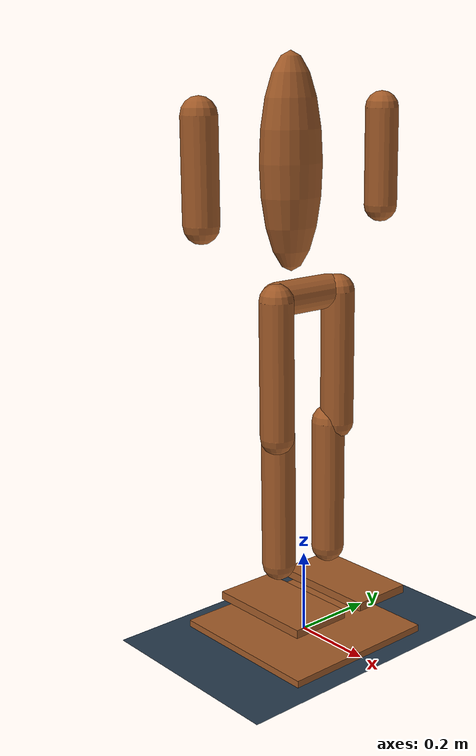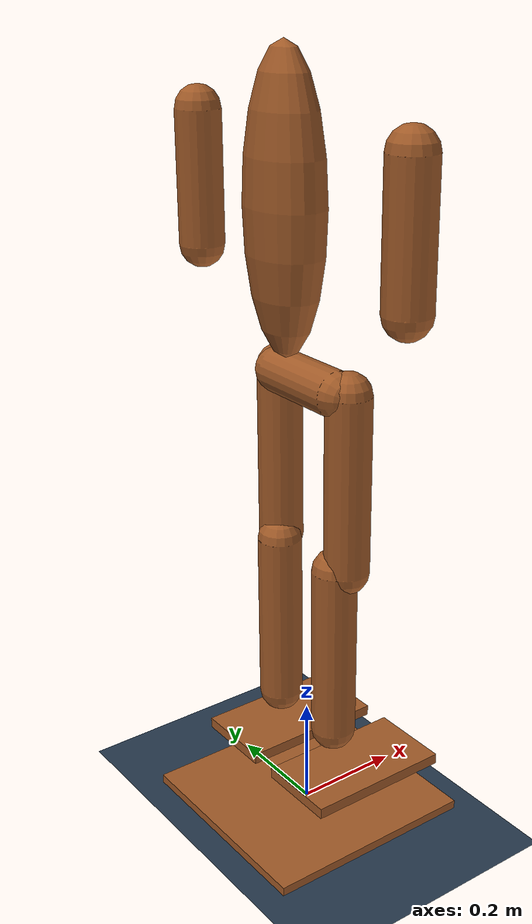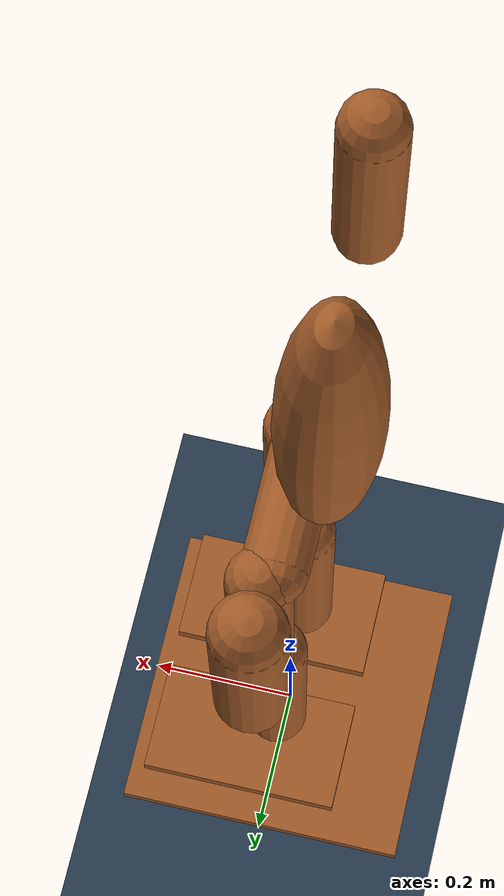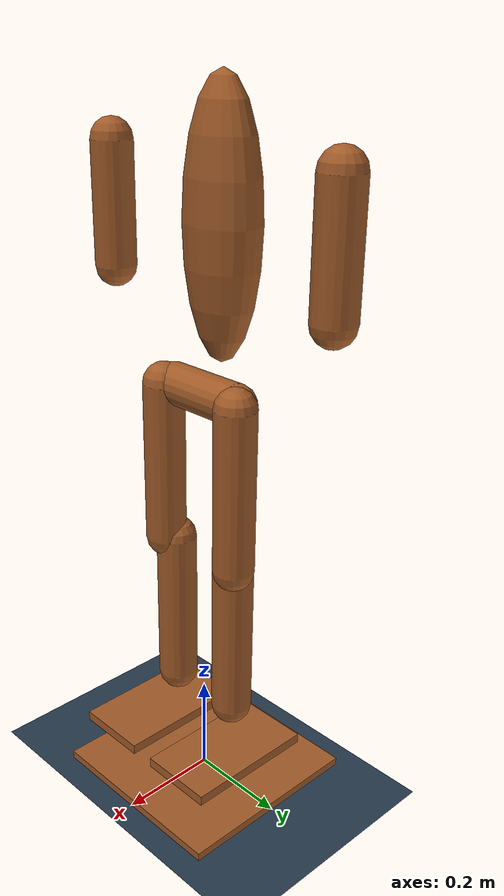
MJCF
<mujoco model="Humanoid">

	<compiler inertiafromgeom = "false" angle = "radian" />

	<default>
		<joint limited = "true" stiffness = "1500" damping = "10" armature = "2.5" />
		<geom condim = "4" material = "matgeom" />
		<motor ctrlrange = "-314.0 314.0" ctrllimited = "true"/>
		<position kp = "15"/>
	</default>

	<option timestep = "0.004" apirate = "144" iterations = "50"/>
	<option impratio = "0.1" />
	<option tolerance = "1e-10" solver = "Newton" />
	<option jacobian = "dense" cone = "pyramidal" gravity = "0.0 0.0 -9.8"/>

	<size nconmax = "50" njmax = "200" nstack = "10000"/>

	<visual>
		<map force = "0.1" zfar = "30"/>
		<rgba haze = "0.15 0.25 0.35 1"/>
		<quality shadowsize = "2048"/>
		<global offwidth = "800" offheight = "800"/>
	</visual>

	<asset>
		<texture type="skybox" builtin="gradient" rgb1="0.3 0.5 0.7" rgb2="0 0 0" width="512" height="512"/>
		<texture name="texplane" type="2d" builtin="checker" rgb1=".2 .3 .4" rgb2=".1 0.15 0.2" width="512" height="512" mark="cross" markrgb=".8 .8 .8"/>
		<texture name="texgeom" type="cube" builtin="flat" mark="cross" width="127" height="1278"
			rgb1="0.8 0.6 0.4" rgb2="0.8 0.6 0.4" markrgb="1 1 1" random="0.01"/>
		<material name="matplane" reflectance="0.3" texture="texplane" texrepeat="1 1" texuniform="true"/>
		<material name="matgeom" texture="texgeom" texuniform="true" rgba="0.8 0.6 .4 1"/>
	</asset>

	<worldbody>
		<geom name = "floor" pos = "0 0 0" size = "0 0 .25" type = "plane" material = "matplane" condim = "3"/>

		<light directional = "false" diffuse = ".2 .2 .2" specular = "0 0 0" pos = "0 0 5" dir = "0 0 -1" castshadow = "false"/>
		<light mode = "targetbodycom" target = "midbody" directional = "false" diffuse = ".8 .8 .8" specular = "0.3 0.3 0.3" pos = "0 0 4.0" dir = "0 0 -1"/>

		<body name = "midbody" pos = "0 0 0.84000000">
			<inertial pos = "0 0 0" mass = "0.00000010" diaginertia = "0.00000010 0.00000010 0.00000010"/>
			<freejoint name = "root" />
			<geom name = "midbody1" type = "capsule" fromto = "0 -0.08000000 0 0 0.08000000 0"  size = "0.04"/>
			<body name = "uppbody" pos = "-0.04200000 0.00000000 0.29600000">
				<joint name = "waist_yaw" type="hinge" pos = "0.04200000 0.00000000 -0.29600000" axis = "0 0 1" range = "-90 90"/>
				<inertial pos = "0 0 0" mass = "19.50000000" diaginertia = "0.61000000 0.38000000 0.30000000"/>
				<geom name = "uppbody1" type = "ellipsoid" size = "0.06 0.08000000 0.24600000" />
				<body name = "larm" pos = "0.01900000 0.27200000 -0.11400000">
					<joint name = "left_arm" type="hinge" pos = "-0.01900000 0.00000000 0.22900000" axis = "0 1 0" range = "-90 90"/>
					<inertial pos = "0 0 0" mass = "1.50000000" diaginertia = "0.04300000 0.04400000 0.00230000"/>
					<geom name = "larm1" type = "capsule" fromto = "0 0 0.22900000 0 0 0"  size = "0.04"/>
				</body>
				<body name = "rarm" pos = "0.01900000 -0.27200000 -0.11400000">
					<joint name = "right_arm" type="hinge" pos = "-0.01900000 0.00000000 0.22900000" axis = "0 1 0" range = "-90 90"/>
					<inertial pos = "0 0 0" mass = "1.50000000" diaginertia = "0.04300000 0.04400000 0.00230000"/>
					<geom name = "rarm1" type = "capsule" fromto = "0 0 0.22900000 0 0 0"  size = "0.04"/>
				</body>
				<site name = "site_imu" pos = "0.04200000 0.00000000 -0.29600000"/>
			</body>
			<body name = "lthigh" pos = "0.01400000 0.09500000 -0.10100000">
				<joint name = "left_leg_1" type="hinge" pos = "-0.01400000 -0.01500000 0.10100000" axis = "0 0 1" range = "-90 90"/>
				<joint name = "left_leg_2" type="hinge" pos = "-0.01400000 -0.01500000 0.10100000" axis = "1 0 0" range = "-90 90"/>
				<joint name = "left_leg_3" type="hinge" pos = "-0.01400000 -0.01500000 0.10100000" axis = "0 1 0" range = "-90 90"/>
				<inertial pos = "0 0 0" mass = "5.80000000" diaginertia = "0.06700000 0.06300000 0.01400000"/>
				<geom name = "lthigh1" type = "capsule" fromto = "0 0 0.10100000 0 0 -0.21900000"  size = "0.04"/>
				<body name = "lshank" pos = "-0.01400000 -0.01500000 -0.31000000">
					<joint name = "left_leg_4" type="hinge" pos = "0.00000000 0.00000000 0.09100000" axis = "0 1 0" range = "-180 180"/>
					<inertial pos = "0 0 0" mass = "1.80000000" diaginertia = "0.03000000 0.03000000 0.00020000"/>
					<geom name = "lshank1" type = "capsule" fromto = "0 0 0.09100000 0 0 -0.22900000"  size = "0.04"/>
					<body name = "lfoot" pos = "0.00000000 0.00000000 -0.30400000">
						<joint name = "left_leg_5" type="hinge" pos = "0.00000000 0.00000000 0.07500000" axis = "0 1 0" range = "-90 90"/>
						<joint name = "left_leg_6" type="hinge" pos = "0.00000000 0.00000000 0.07500000" axis = "1 0 0" range = "-90 90"/>
						<inertial pos = "0 0 0" mass = "1.15000000" diaginertia = "0.00170000 0.00470000 0.00520000"/>
						<body name = "lfoot_bottom" pos = "0.03500000 0.02000000 -0.01500000">
							<inertial pos = "0 0 0" mass = "0.00000010" diaginertia = "0.00000010 0.00000010 0.00000010"/>
							<geom name = "lfoot_bottom1" type = "box" size = "0.13500000 0.07500000 0.01000000"/>
							<site name = "site_lforcesensor" pos = "-0.03500000 -0.02000000 0.08000000"/>
						</body>
					</body>
				</body>
			</body>
			<body name = "rthigh" pos = "0.01400000 -0.09500000 -0.10100000">
				<joint name = "right_leg_1" type="hinge" pos = "-0.01400000 0.01500000 0.10100000" axis = "0 0 1" range = "-90 90"/>
				<joint name = "right_leg_2" type="hinge" pos = "-0.01400000 0.01500000 0.10100000" axis = "1 0 0" range = "-90 90"/>
				<joint name = "right_leg_3" type="hinge" pos = "-0.01400000 0.01500000 0.10100000" axis = "0 1 0" range = "-90 90"/>
				<inertial pos = "0 0 0" mass = "5.80000000" diaginertia = "0.06700000 0.06300000 0.01400000"/>
				<geom name = "rthigh1" type = "capsule" fromto = "0 0 0.10100000 0 0 -0.21900000"  size = "0.04"/>
				<body name = "rshank" pos = "-0.01400000 0.01500000 -0.31000000">
					<joint name = "right_leg_4" type="hinge" pos = "0.00000000 0.00000000 0.09100000" axis = "0 1 0" range = "-180 180"/>
					<inertial pos = "0 0 0" mass = "1.80000000" diaginertia = "0.03000000 0.03000000 0.00020000"/>
					<geom name = "rshank1" type = "capsule" fromto = "0 0 0.09100000 0 0 -0.22900000"  size = "0.04"/>
					<body name = "rfoot" pos = "0.00000000 0.00000000 -0.30400000">
						<joint name = "right_leg_5" type="hinge" pos = "0.00000000 0.00000000 0.07500000" axis = "0 1 0" range = "-90 90"/>
						<joint name = "right_leg_6" type="hinge" pos = "0.00000000 0.00000000 0.07500000" axis = "1 0 0" range = "-90 90"/>
						<inertial pos = "0 0 0" mass = "1.15000000" diaginertia = "0.00170000 0.00470000 0.00520000"/>
						<body name = "rfoot_bottom" pos = "0.03500000 -0.02000000 -0.01500000">
							<inertial pos = "0 0 0" mass = "0.00000010" diaginertia = "0.00000010 0.00000010 0.00000010"/>
							<geom name = "rfoot_bottom1" type = "box" size = "0.13500000 0.07500000 0.01000000"/>
							<site name = "site_rforcesensor" pos = "-0.03500000 0.02000000 0.08000000"/>
						</body>
					</body>
				</body>
			</body>
		</body>

		<body name = "block1" pos = "0 0 0">
			<inertial pos = "0 0 0" mass = "1" diaginertia = "0.01 0.01 0.01"/>
			<freejoint name = "blockfree1" />
			<geom name = "blockbody1" type = "box" size = "0.2 0.2 0.015"/>
		</body>
	</worldbody>

	<sensor>
		<force name = "lforcesonsor" site = "site_lforcesensor" cutoff = "2000.0"/>
		<torque name = "ltorquesonsor" site = "site_lforcesensor" cutoff = "2000.0"/>
		<force name = "rforcesonsor" site = "site_rforcesensor" cutoff = "2000.0"/>
		<torque name = "rtorquesonsor" site = "site_rforcesensor" cutoff = "2000.0"/>
	</sensor>
	<actuator>
		<position name="waist_yaw" gear="100.00000" joint="waist_yaw"/>
		<position name="left_arm" gear="100.00000" joint="left_arm"/>
		<position name="right_arm" gear="100.00000" joint="right_arm"/>
		<position name="left_leg_1" gear="100.00000" joint="left_leg_1"/>
		<position name="left_leg_2" gear="100.00000" joint="left_leg_2"/>
		<position name="left_leg_3" gear="100.00000" joint="left_leg_3"/>
		<position name="left_leg_4" gear="100.00000" joint="left_leg_4"/>
		<position name="left_leg_5" gear="100.00000" joint="left_leg_5"/>
		<position name="left_leg_6" gear="100.00000" joint="left_leg_6"/>
		<position name="right_leg_1" gear="100.00000" joint="right_leg_1"/>
		<position name="right_leg_2" gear="100.00000" joint="right_leg_2"/>
		<position name="right_leg_3" gear="100.00000" joint="right_leg_3"/>
		<position name="right_leg_4" gear="100.00000" joint="right_leg_4"/>
		<position name="right_leg_5" gear="100.00000" joint="right_leg_5"/>
		<position name="right_leg_6" gear="100.00000" joint="right_leg_6"/>
	</actuator>

	<contact>
		<exclude body1 = "midbody" body2 = "uppbody"/>
		<exclude body1 = "midbody" body2 = "larm"/>
		<exclude body1 = "midbody" body2 = "rarm"/>
		<exclude body1 = "midbody" body2 = "lthigh"/>
		<exclude body1 = "midbody" body2 = "lshank"/>
		<exclude body1 = "midbody" body2 = "lfoot"/>
		<exclude body1 = "midbody" body2 = "rthigh"/>
		<exclude body1 = "midbody" body2 = "rshank"/>
		<exclude body1 = "midbody" body2 = "rfoot"/>
		<exclude body1 = "uppbody" body2 = "larm"/>
		<exclude body1 = "uppbody" body2 = "rarm"/>
		<exclude body1 = "uppbody" body2 = "lthigh"/>
		<exclude body1 = "uppbody" body2 = "lshank"/>
		<exclude body1 = "uppbody" body2 = "lfoot"/>
		<exclude body1 = "uppbody" body2 = "rthigh"/>
		<exclude body1 = "uppbody" body2 = "rshank"/>
		<exclude body1 = "uppbody" body2 = "rfoot"/>
		<exclude body1 = "larm" body2 = "rarm"/>
		<exclude body1 = "larm" body2 = "lthigh"/>
		<exclude body1 = "larm" body2 = "lshank"/>
		<exclude body1 = "larm" body2 = "lfoot"/>
		<exclude body1 = "larm" body2 = "rthigh"/>
		<exclude body1 = "larm" body2 = "rshank"/>
		<exclude body1 = "larm" body2 = "rfoot"/>
		<exclude body1 = "rarm" body2 = "lthigh"/>
		<exclude body1 = "rarm" body2 = "lshank"/>
		<exclude body1 = "rarm" body2 = "lfoot"/>
		<exclude body1 = "rarm" body2 = "rthigh"/>
		<exclude body1 = "rarm" body2 = "rshank"/>
		<exclude body1 = "rarm" body2 = "rfoot"/>
		<exclude body1 = "lthigh" body2 = "lshank"/>
		<exclude body1 = "lthigh" body2 = "lfoot"/>
		<exclude body1 = "lthigh" body2 = "rthigh"/>
		<exclude body1 = "lthigh" body2 = "rshank"/>
		<exclude body1 = "lthigh" body2 = "rfoot"/>
		<exclude body1 = "lshank" body2 = "lfoot"/>
		<exclude body1 = "lshank" body2 = "rthigh"/>
		<exclude body1 = "lshank" body2 = "rshank"/>
		<exclude body1 = "lshank" body2 = "rfoot"/>
		<exclude body1 = "lfoot" body2 = "rthigh"/>
		<exclude body1 = "lfoot" body2 = "rshank"/>
		<exclude body1 = "lfoot" body2 = "rfoot"/>
		<exclude body1 = "rthigh" body2 = "rshank"/>
		<exclude body1 = "rthigh" body2 = "rfoot"/>
		<exclude body1 = "rshank" body2 = "rfoot"/>
	</contact>

</mujoco>
